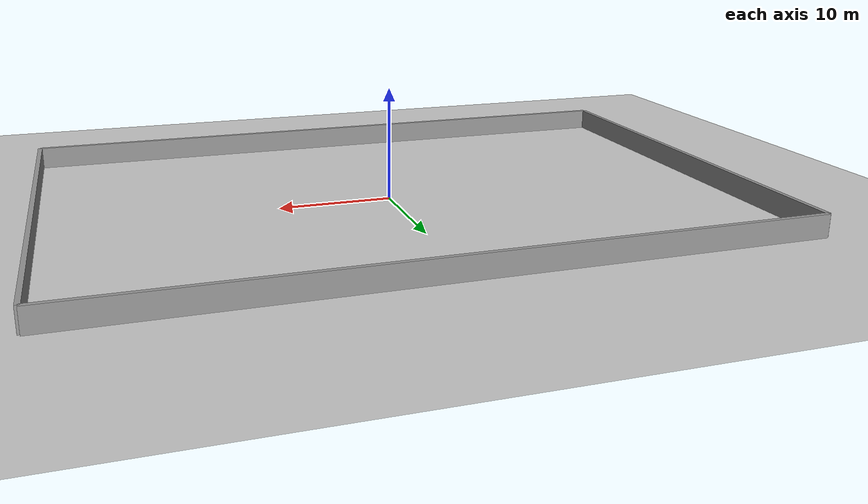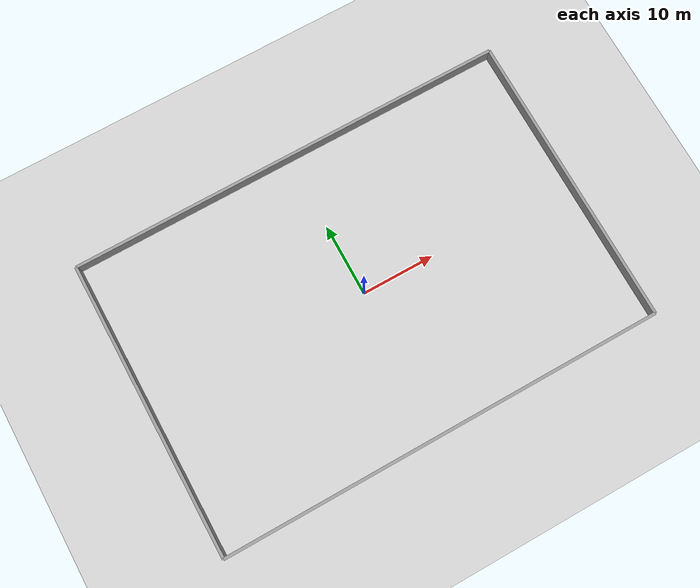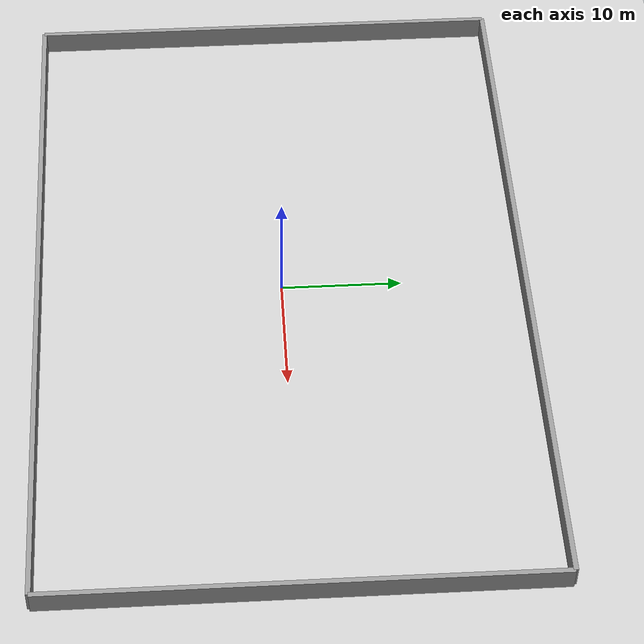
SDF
<?xml version="1.0" ?>
<!-- 广场 60m x 40m 空地，四周有墙 -->
<sdf version="1.6">
  <world name="plaza">
    <include>
      <uri>model://sun</uri>
    </include>
    <include>
      <uri>model://ground_plane</uri>
    </include>

    <physics type="ode">
      <max_step_size>0.001</max_step_size>
      <real_time_factor>1</real_time_factor>
      <real_time_update_rate>1000</real_time_update_rate>
      <ode>
        <solver>
          <type>quick</type>
          <iters>100</iters>
          <sor>1.3</sor>
        </solver>
        <constraints>
          <cfm>0.0</cfm>
          <erp>0.2</erp>
          <contact_max_correcting_vel>0.5</contact_max_correcting_vel>
          <contact_surface_layer>0.001</contact_surface_layer>
        </constraints>
      </ode>
    </physics>

    <model name="wall_north">
      <static>true</static>
      <link name="link">
        <collision name="collision">
          <geometry><box><size>60.4 0.4 2</size></box></geometry>
        </collision>
        <visual name="visual">
          <geometry><box><size>60.4 0.4 2</size></box></geometry>
          <material><ambient>0.6 0.6 0.6 1</ambient></material>
        </visual>
      </link>
      <pose>0 20.2 1 0 0 0</pose>
    </model>

    <model name="wall_south">
      <static>true</static>
      <link name="link">
        <collision name="collision">
          <geometry><box><size>60.4 0.4 2</size></box></geometry>
        </collision>
        <visual name="visual">
          <geometry><box><size>60.4 0.4 2</size></box></geometry>
          <material><ambient>0.6 0.6 0.6 1</ambient></material>
        </visual>
      </link>
      <pose>0 -20.2 1 0 0 0</pose>
    </model>

    <model name="wall_east">
      <static>true</static>
      <link name="link">
        <collision name="collision">
          <geometry><box><size>0.4 40.4 2</size></box></geometry>
        </collision>
        <visual name="visual">
          <geometry><box><size>0.4 40.4 2</size></box></geometry>
          <material><ambient>0.6 0.6 0.6 1</ambient></material>
        </visual>
      </link>
      <pose>30.2 0 1 0 0 0</pose>
    </model>

    <model name="wall_west">
      <static>true</static>
      <link name="link">
        <collision name="collision">
          <geometry><box><size>0.4 40.4 2</size></box></geometry>
        </collision>
        <visual name="visual">
          <geometry><box><size>0.4 40.4 2</size></box></geometry>
          <material><ambient>0.6 0.6 0.6 1</ambient></material>
        </visual>
      </link>
      <pose>-30.2 0 1 0 0 0</pose>
    </model>
      <plugin name="gazebo_ros_state" filename="libgazebo_ros_state.so">
      <ros>
        <remapping>~/link_states:=/gazebo/link_states</remapping>
        <remapping>~/model_states:=/gazebo/model_states</remapping>
      </ros>
    </plugin>
  </world>
</sdf>
